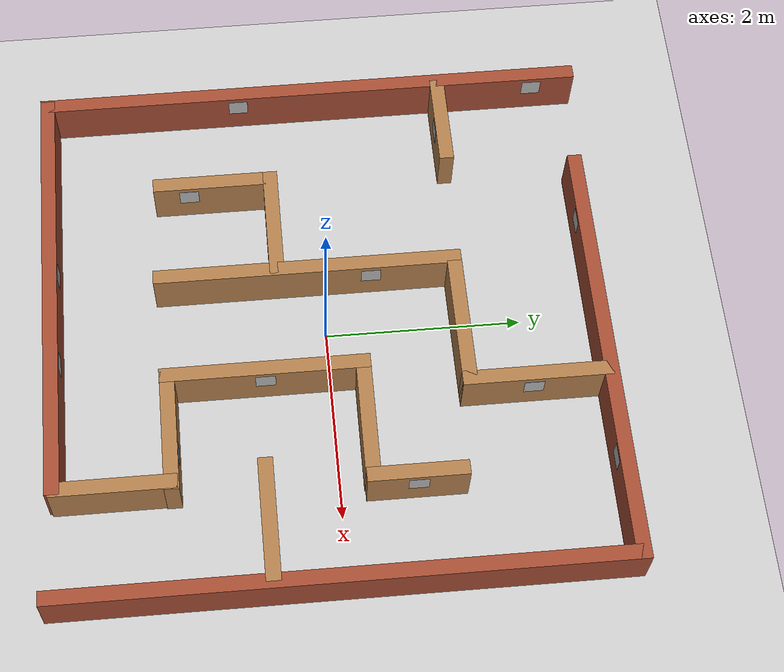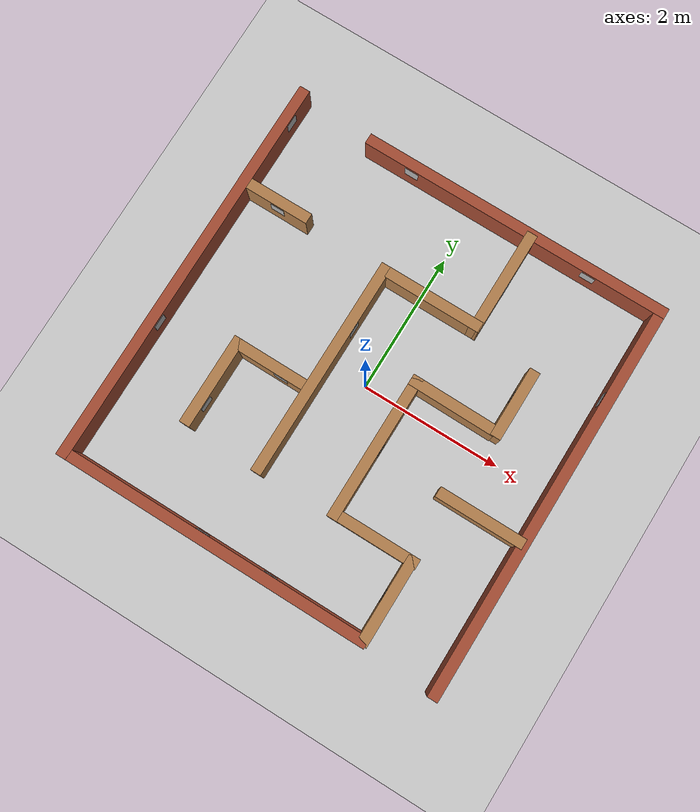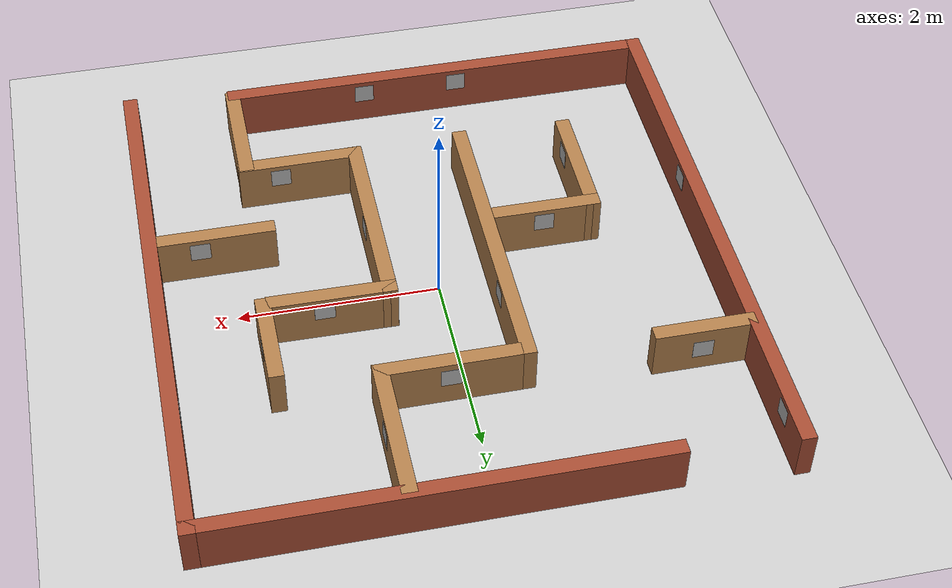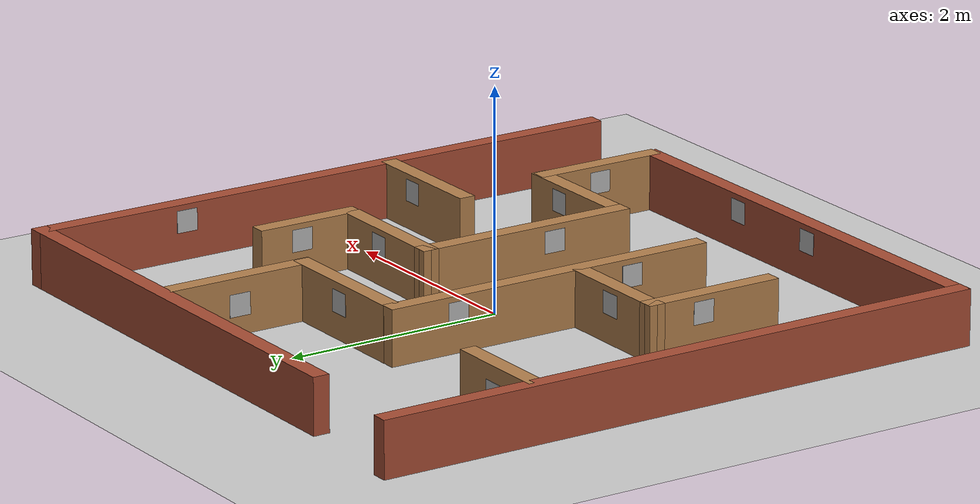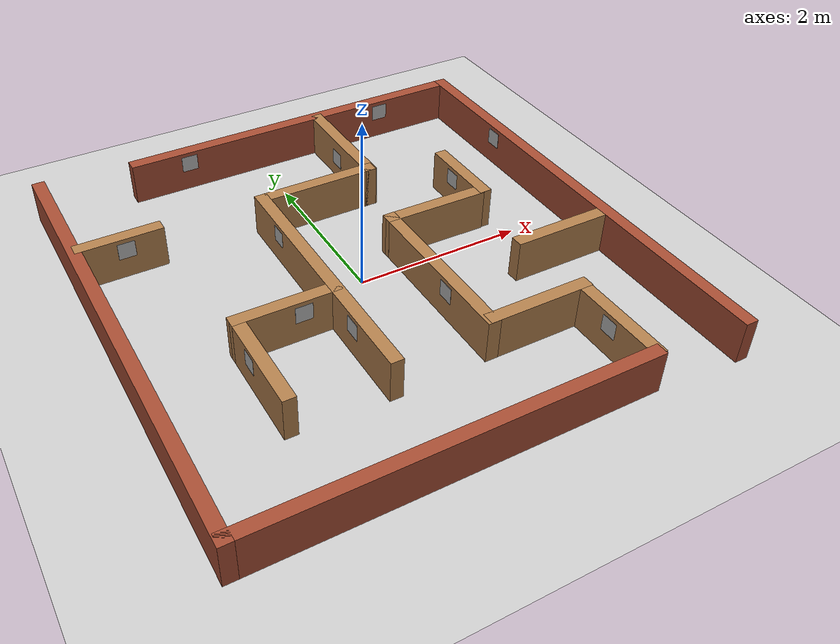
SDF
<sdf version='1.6'>
  <world name='default'>
    <light name='sun' type='directional'>
      <cast_shadows>1</cast_shadows>
      <pose frame=''>0 0 10 0 -0 0</pose>
      <diffuse>0.8 0.8 0.8 1</diffuse>
      <specular>0.2 0.2 0.2 1</specular>
      <attenuation>
        <range>1000</range>
        <constant>0.9</constant>
        <linear>0.01</linear>
        <quadratic>0.001</quadratic>
      </attenuation>
      <direction>-0.5 0.1 -0.9</direction>
    </light>
    <model name='ground_plane'>
      <static>1</static>
      <link name='link'>
        <collision name='collision'>
          <geometry>
            <plane>
              <normal>0 0 1</normal>
              <size>100 100</size>
            </plane>
          </geometry>
          <surface>
            <friction>
              <ode>
                <mu>100</mu>
                <mu2>50</mu2>
              </ode>
              <torsional>
                <ode/>
              </torsional>
            </friction>
            <contact>
              <ode/>
            </contact>
            <bounce/>
          </surface>
          <max_contacts>10</max_contacts>
        </collision>
        <visual name='visual'>
          <cast_shadows>0</cast_shadows>
          <geometry>
            <plane>
              <normal>0 0 1</normal>
              <size>100 100</size>
            </plane>
          </geometry>
          <material>
            <script>
              <uri>file://media/materials/scripts/gazebo.material</uri>
              <name>Gazebo/Grey</name>
            </script>
          </material>
        </visual>
        <self_collide>0</self_collide>
        <enable_wind>0</enable_wind>
        <kinematic>0</kinematic>
      </link>
    </model>
    <gravity>0 0 -9.8</gravity>
    <magnetic_field>6e-06 2.3e-05 -4.2e-05</magnetic_field>
    <atmosphere type='adiabatic'/>
    <physics name='default_physics' default='0' type='ode'>
      <max_step_size>0.001</max_step_size>
      <real_time_factor>1</real_time_factor>
      <real_time_update_rate>1000</real_time_update_rate>
    </physics>
    <scene>
      <ambient>0.4 0.4 0.4 1</ambient>
      <background>0.7 0.7 0.7 1</background>
      <shadows>1</shadows>
    </scene>
    <audio>
      <device>default</device>
    </audio>
    <wind/>
    <spherical_coordinates>
      <surface_model>EARTH_WGS84</surface_model>
      <latitude_deg>0</latitude_deg>
      <longitude_deg>0</longitude_deg>
      <elevation>0</elevation>
      <heading_deg>0</heading_deg>
    </spherical_coordinates>
    <model name='pokemon_maze_cs401'>
      <pose frame=''>0 -0.0 0 0 -0 0</pose>
      <link name='Wall_14'>
        <collision name='Wall_14_Collision'>
          <geometry>
            <box>
              <size>4.5 0.15 0.5</size>
            </box>
          </geometry>
          <pose frame=''>0 0 0.25 0 -0 0</pose>
          <max_contacts>10</max_contacts>
          <surface>
            <contact>
              <ode/>
            </contact>
            <bounce/>
            <friction>
              <torsional>
                <ode/>
              </torsional>
              <ode/>
            </friction>
          </surface>
        </collision>
        <visual name='Wall_14_Visual'>
          <pose frame=''>0 0 0.25 0 -0 0</pose>
          <geometry>
            <box>
              <size>4.5 0.15 0.5</size>
            </box>
          </geometry>
          <material>
            <script>
              <uri>file://media/materials/scripts/gazebo.material</uri>
              <name>Gazebo/Bricks</name>
            </script>
            <ambient>1 1 1 1</ambient>
          </material>
          <meta>
            <layer>0</layer>
          </meta>
        </visual>
        <pose frame=''>0.575138 2.76514 0 0 -0 0</pose>
        <self_collide>0</self_collide>
        <enable_wind>0</enable_wind>
        <kinematic>0</kinematic>
      </link>
      <link name='Wall_15'>
        <collision name='Wall_15_Collision'>
          <geometry>
            <box>
              <size>5.75 0.15 0.5</size>
            </box>
          </geometry>
          <pose frame=''>0 0 0.25 0 -0 0</pose>
          <max_contacts>10</max_contacts>
          <surface>
            <contact>
              <ode/>
            </contact>
            <bounce/>
            <friction>
              <torsional>
                <ode/>
              </torsional>
              <ode/>
            </friction>
          </surface>
        </collision>
        <visual name='Wall_15_Visual'>
          <pose frame=''>0 0 0.25 0 -0 0</pose>
          <geometry>
            <box>
              <size>5.75 0.15 0.5</size>
            </box>
          </geometry>
          <material>
            <script>
              <uri>file://media/materials/scripts/gazebo.material</uri>
              <name>Gazebo/Bricks</name>
            </script>
            <ambient>1 1 1 1</ambient>
          </material>
          <meta>
            <layer>0</layer>
          </meta>
        </visual>
        <pose frame=''>2.75014 -0.034857 0 0 -0 -1.5708</pose>
        <self_collide>0</self_collide>
        <enable_wind>0</enable_wind>
        <kinematic>0</kinematic>
      </link>
      <link name='Wall_17'>
        <collision name='Wall_17_Collision'>
          <geometry>
            <box>
              <size>5.75 0.15 0.5</size>
            </box>
          </geometry>
          <pose frame=''>0 0 0.25 0 -0 0</pose>
          <max_contacts>10</max_contacts>
          <surface>
            <contact>
              <ode/>
            </contact>
            <bounce/>
            <friction>
              <torsional>
                <ode/>
              </torsional>
              <ode/>
            </friction>
          </surface>
        </collision>
        <visual name='Wall_17_Visual'>
          <pose frame=''>0 0 0.25 0 -0 0</pose>
          <geometry>
            <box>
              <size>5.75 0.15 0.5</size>
            </box>
          </geometry>
          <material>
            <script>
              <uri>file://media/materials/scripts/gazebo.material</uri>
              <name>Gazebo/Bricks</name>
            </script>
            <ambient>1 1 1 1</ambient>
          </material>
          <meta>
            <layer>0</layer>
          </meta>
        </visual>
        <pose frame=''>-2.75014 0.034857 0 0 -0 -1.5708</pose>
        <self_collide>0</self_collide>
        <enable_wind>0</enable_wind>
        <kinematic>0</kinematic>
      </link>
      <link name='Wall_18'>
        <collision name='Wall_18_Collision'>
          <geometry>
            <box>
              <size>4.53776 0.15 0.5</size>
            </box>
          </geometry>
          <pose frame=''>0 0 0.25 0 -0 0</pose>
          <max_contacts>10</max_contacts>
          <surface>
            <contact>
              <ode/>
            </contact>
            <bounce/>
            <friction>
              <torsional>
                <ode/>
              </torsional>
              <ode/>
            </friction>
          </surface>
        </collision>
        <visual name='Wall_18_Visual'>
          <pose frame=''>0 0 0.25 0 -0 0</pose>
          <geometry>
            <box>
              <size>4.53776 0.15 0.5</size>
            </box>
          </geometry>
          <material>
            <script>
              <uri>file://media/materials/scripts/gazebo.material</uri>
              <name>Gazebo/Bricks</name>
            </script>
            <ambient>1 1 1 1</ambient>
          </material>
          <meta>
            <layer>0</layer>
          </meta>
        </visual>
        <pose frame=''>-0.541342 -2.76514 0 0 -0 0</pose>
        <self_collide>0</self_collide>
        <enable_wind>0</enable_wind>
        <kinematic>0</kinematic>
      </link>
      <link name='Wall_20'>
        <collision name='Wall_20_Collision'>
          <geometry>
            <box>
              <size>1.39624 0.15 0.5</size>
            </box>
          </geometry>
          <pose frame=''>0 0 0.25 0 -0 0</pose>
          <max_contacts>10</max_contacts>
          <surface>
            <contact>
              <ode/>
            </contact>
            <bounce/>
            <friction>
              <torsional>
                <ode/>
              </torsional>
              <ode/>
            </friction>
          </surface>
        </collision>
        <visual name='Wall_20_Visual'>
          <pose frame=''>0 0 0.25 0 -0 0</pose>
          <geometry>
            <box>
              <size>1.39624 0.15 0.5</size>
            </box>
          </geometry>
          <material>
            <script>
              <uri>file://media/materials/scripts/gazebo.material</uri>
              <name>Gazebo/Wood</name>
            </script>
            <ambient>1 1 1 1</ambient>
          </material>
          <meta>
            <layer>0</layer>
          </meta>
        </visual>
        <pose frame=''>0.186958 1.35833 0 0 -0 0</pose>
        <self_collide>0</self_collide>
        <enable_wind>0</enable_wind>
        <kinematic>0</kinematic>
      </link>
      <link name='Wall_21'>
        <collision name='Wall_21_Collision'>
          <geometry>
            <box>
              <size>1.5 0.15 0.5</size>
            </box>
          </geometry>
          <pose frame=''>0 0 0.25 0 -0 0</pose>
          <max_contacts>10</max_contacts>
          <surface>
            <contact>
              <ode/>
            </contact>
            <bounce/>
            <friction>
              <torsional>
                <ode/>
              </torsional>
              <ode/>
            </friction>
          </surface>
        </collision>
        <visual name='Wall_21_Visual'>
          <pose frame=''>0 0 0.25 0 -0 0</pose>
          <geometry>
            <box>
              <size>1.5 0.15 0.5</size>
            </box>
          </geometry>
          <material>
            <script>
              <uri>file://media/materials/scripts/gazebo.material</uri>
              <name>Gazebo/Wood</name>
            </script>
            <ambient>1 1 1 1</ambient>
          </material>
          <meta>
            <layer>0</layer>
          </meta>
        </visual>
        <pose frame=''>0.823048 2.03333 0 0 -0 1.5708</pose>
        <self_collide>0</self_collide>
        <enable_wind>0</enable_wind>
        <kinematic>0</kinematic>
      </link>
      <link name='Wall_23'>
        <collision name='Wall_23_Collision'>
          <geometry>
            <box>
              <size>3.15 0.15 0.5</size>
            </box>
          </geometry>
          <pose frame=''>0 0 0.25 0 -0 0</pose>
          <max_contacts>10</max_contacts>
          <surface>
            <contact>
              <ode/>
            </contact>
            <bounce/>
            <friction>
              <torsional>
                <ode/>
              </torsional>
              <ode/>
            </friction>
          </surface>
        </collision>
        <visual name='Wall_23_Visual'>
          <pose frame=''>0 0 0.25 0 -0 0</pose>
          <geometry>
            <box>
              <size>3.15 0.15 0.5</size>
            </box>
          </geometry>
          <material>
            <script>
              <uri>file://media/materials/scripts/gazebo.material</uri>
              <name>Gazebo/Wood</name>
            </script>
            <ambient>1 1 1 1</ambient>
          </material>
          <meta>
            <layer>0</layer>
          </meta>
        </visual>
        <pose frame=''>-0.562909 -0.142882 0 0 -0 -1.5708</pose>
        <self_collide>0</self_collide>
        <enable_wind>0</enable_wind>
        <kinematic>0</kinematic>
      </link>
      <link name='Wall_25'>
        <collision name='Wall_25_Collision'>
          <geometry>
            <box>
              <size>1 0.15 0.5</size>
            </box>
          </geometry>
          <pose frame=''>0 0 0.25 0 -0 0</pose>
          <max_contacts>10</max_contacts>
          <surface>
            <contact>
              <ode/>
            </contact>
            <bounce/>
            <friction>
              <torsional>
                <ode/>
              </torsional>
              <ode/>
            </friction>
          </surface>
        </collision>
        <visual name='Wall_25_Visual'>
          <pose frame=''>0 0 0.25 0 -0 0</pose>
          <geometry>
            <box>
              <size>1 0.15 0.5</size>
            </box>
          </geometry>
          <material>
            <script>
              <uri>file://media/materials/scripts/gazebo.material</uri>
              <name>Gazebo/Wood</name>
            </script>
            <ambient>1 1 1 1</ambient>
          </material>
          <meta>
            <layer>0</layer>
          </meta>
        </visual>
        <pose frame=''>-2.25203 1.42375 0 0 -0 0</pose>
        <self_collide>0</self_collide>
        <enable_wind>0</enable_wind>
        <kinematic>0</kinematic>
      </link>
      <link name='Wall_27'>
        <collision name='Wall_27_Collision'>
          <geometry>
            <box>
              <size>1.3 0.15 0.5</size>
            </box>
          </geometry>
          <pose frame=''>0 0 0.25 0 -0 0</pose>
          <max_contacts>10</max_contacts>
          <surface>
            <contact>
              <ode/>
            </contact>
            <bounce/>
            <friction>
              <torsional>
                <ode/>
              </torsional>
              <ode/>
            </friction>
          </surface>
        </collision>
        <visual name='Wall_27_Visual'>
          <pose frame=''>0 0 0.25 0 -0 0</pose>
          <geometry>
            <box>
              <size>1.3 0.15 0.5</size>
            </box>
          </geometry>
          <material>
            <script>
              <uri>file://media/materials/scripts/gazebo.material</uri>
              <name>Gazebo/Wood</name>
            </script>
            <ambient>1 1 1 1</ambient>
          </material>
          <meta>
            <layer>0</layer>
          </meta>
        </visual>
        <pose frame=''>-1.6582 -1.02577 0 0 -0 -1.5708</pose>
        <self_collide>0</self_collide>
        <enable_wind>0</enable_wind>
        <kinematic>0</kinematic>
      </link>
      <link name='Wall_33'>
        <collision name='Wall_33_Collision'>
          <geometry>
            <box>
              <size>1 0.15 0.5</size>
            </box>
          </geometry>
          <pose frame=''>0 0 0.25 0 -0 0</pose>
          <max_contacts>10</max_contacts>
          <surface>
            <contact>
              <ode/>
            </contact>
            <bounce/>
            <friction>
              <torsional>
                <ode/>
              </torsional>
              <ode/>
            </friction>
          </surface>
        </collision>
        <visual name='Wall_33_Visual'>
          <pose frame=''>0 0 0.25 0 -0 0</pose>
          <geometry>
            <box>
              <size>1 0.15 0.5</size>
            </box>
          </geometry>
          <material>
            <script>
              <uri>file://media/materials/scripts/gazebo.material</uri>
              <name>Gazebo/Wood</name>
            </script>
            <ambient>1 1 1 1</ambient>
          </material>
          <meta>
            <layer>0</layer>
          </meta>
        </visual>
        <pose frame=''>1.76558 0.7465 0 0 -0 -1.5708</pose>
        <self_collide>0</self_collide>
        <enable_wind>0</enable_wind>
        <kinematic>0</kinematic>
      </link>
      <link name='Wall_35'>
        <collision name='Wall_35_Collision'>
          <geometry>
            <box>
              <size>2.1 0.15 0.5</size>
            </box>
          </geometry>
          <pose frame=''>0 0 0.25 0 -0 0</pose>
          <max_contacts>10</max_contacts>
          <surface>
            <contact>
              <ode/>
            </contact>
            <bounce/>
            <friction>
              <torsional>
                <ode/>
              </torsional>
              <ode/>
            </friction>
          </surface>
        </collision>
        <visual name='Wall_35_Visual'>
          <pose frame=''>0 0 0.25 0 -0 0</pose>
          <geometry>
            <box>
              <size>2.1 0.15 0.5</size>
            </box>
          </geometry>
          <material>
            <script>
              <uri>file://media/materials/scripts/gazebo.material</uri>
              <name>Gazebo/Wood</name>
            </script>
            <ambient>1 1 1 1</ambient>
          </material>
          <meta>
            <layer>0</layer>
          </meta>
        </visual>
        <pose frame=''>0.54985 -0.650626 0 0 -0 -1.5708</pose>
        <self_collide>0</self_collide>
        <enable_wind>0</enable_wind>
        <kinematic>0</kinematic>
      </link>
      <link name='Wall_39'>
        <collision name='Wall_39_Collision'>
          <geometry>
            <box>
              <size>1.25 0.15 0.5</size>
            </box>
          </geometry>
          <pose frame=''>0 0 0.25 0 -0 0</pose>
          <max_contacts>10</max_contacts>
          <surface>
            <contact>
              <ode/>
            </contact>
            <bounce/>
            <friction>
              <torsional>
                <ode/>
              </torsional>
              <ode/>
            </friction>
          </surface>
        </collision>
        <visual name='Wall_39_Visual'>
          <pose frame=''>0 0 0.25 0 -0 0</pose>
          <geometry>
            <box>
              <size>1.25 0.15 0.5</size>
            </box>
          </geometry>
          <material>
            <script>
              <uri>file://media/materials/scripts/gazebo.material</uri>
              <name>Gazebo/Wood</name>
            </script>
            <ambient>1 1 1 1</ambient>
          </material>
          <meta>
            <layer>0</layer>
          </meta>
        </visual>
        <pose frame=''>1.13595 -1.62351 0 0 -0 0</pose>
        <self_collide>0</self_collide>
        <enable_wind>0</enable_wind>
        <kinematic>0</kinematic>
      </link>
      <link name='Wall_41'>
        <collision name='Wall_41_Collision'>
          <geometry>
            <box>
              <size>1.25 0.15 0.5</size>
            </box>
          </geometry>
          <pose frame=''>0 0 0.25 0 -0 0</pose>
          <max_contacts>10</max_contacts>
          <surface>
            <contact>
              <ode/>
            </contact>
            <bounce/>
            <friction>
              <torsional>
                <ode/>
              </torsional>
              <ode/>
            </friction>
          </surface>
        </collision>
        <visual name='Wall_41_Visual'>
          <pose frame=''>0 0 0.25 0 -0 0</pose>
          <geometry>
            <box>
              <size>1.25 0.15 0.5</size>
            </box>
          </geometry>
          <material>
            <script>
              <uri>file://media/materials/scripts/gazebo.material</uri>
              <name>Gazebo/Wood</name>
            </script>
            <ambient>1 1 1 1</ambient>
          </material>
          <meta>
            <layer>0</layer>
          </meta>
        </visual>
        <pose frame=''>1.6754 -2.18759 0 0 -0 -1.5708</pose>
        <self_collide>0</self_collide>
        <enable_wind>0</enable_wind>
        <kinematic>0</kinematic>
      </link>
      <link name='Wall_43'>
        <collision name='Wall_43_Collision'>
          <geometry>
            <box>
              <size>1.26134 0.15 0.5</size>
            </box>
          </geometry>
          <pose frame=''>0 0 0.25 0 -0 0</pose>
          <max_contacts>10</max_contacts>
          <surface>
            <contact>
              <ode/>
            </contact>
            <bounce/>
            <friction>
              <torsional>
                <ode/>
              </torsional>
              <ode/>
            </friction>
          </surface>
        </collision>
        <visual name='Wall_43_Visual'>
          <pose frame=''>0 0 0.25 0 -0 0</pose>
          <geometry>
            <box>
              <size>1.26134 0.15 0.5</size>
            </box>
          </geometry>
          <material>
            <script>
              <uri>file://media/materials/scripts/gazebo.material</uri>
              <name>Gazebo/Wood</name>
            </script>
            <ambient>1 1 1 1</ambient>
          </material>
          <meta>
            <layer>0</layer>
          </meta>
        </visual>
        <pose frame=''>1.10549 0.318735 0 0 -0 -0.010148</pose>
        <self_collide>0</self_collide>
        <enable_wind>0</enable_wind>
        <kinematic>0</kinematic>
      </link>
      <link name='Wall_47'>
        <collision name='Wall_47_Collision'>
          <geometry>
            <box>
              <size>1.25 0.15 0.5</size>
            </box>
          </geometry>
          <pose frame=''>0 0 0.25 0 -0 0</pose>
          <max_contacts>10</max_contacts>
          <surface>
            <contact>
              <ode/>
            </contact>
            <bounce/>
            <friction>
              <torsional>
                <ode/>
              </torsional>
              <ode/>
            </friction>
          </surface>
        </collision>
        <visual name='Wall_47_Visual'>
          <pose frame=''>0 0 0.25 0 -0 0</pose>
          <geometry>
            <box>
              <size>1.25 0.15 0.5</size>
            </box>
          </geometry>
          <material>
            <script>
              <uri>file://media/materials/scripts/gazebo.material</uri>
              <name>Gazebo/Wood</name>
            </script>
            <ambient>1 1 1 1</ambient>
          </material>
          <meta>
            <layer>0</layer>
          </meta>
        </visual>
        <pose frame=''>2.13068 -0.714156 0 0 -0 0</pose>
        <self_collide>0</self_collide>
        <enable_wind>0</enable_wind>
        <kinematic>0</kinematic>
      </link>
      <link name='Wall_49'>
        <collision name='Wall_49_Collision'>
          <geometry>
            <box>
              <size>1.22083 0.15 0.5</size>
            </box>
          </geometry>
          <pose frame=''>0 0 0.25 0 -0 0</pose>
          <max_contacts>10</max_contacts>
          <surface>
            <contact>
              <ode/>
            </contact>
            <bounce/>
            <friction>
              <torsional>
                <ode/>
              </torsional>
              <ode/>
            </friction>
          </surface>
        </collision>
        <visual name='Wall_49_Visual'>
          <pose frame=''>0 0 0.25 0 -0 0</pose>
          <geometry>
            <box>
              <size>1.22083 0.15 0.5</size>
            </box>
          </geometry>
          <material>
            <script>
              <uri>file://media/materials/scripts/gazebo.material</uri>
              <name>Gazebo/Wood</name>
            </script>
            <ambient>1 1 1 1</ambient>
          </material>
          <meta>
            <layer>0</layer>
          </meta>
        </visual>
        <pose frame=''>-1.12279 -0.452587 0 0 -0 -0.003397</pose>
        <self_collide>0</self_collide>
        <enable_wind>0</enable_wind>
        <kinematic>0</kinematic>
      </link>
      <static>1</static>
    </model>
    <model name='Pokemon00'>
      <static>1</static>
      <link name='link'>
        <visual name='visual'>
          <geometry>
            <mesh>
              <uri>model://pokemon00/meshes/Marker0.dae</uri>
              <scale>0.4 0.4 0.4</scale>
            </mesh>
          </geometry>
        </visual>
        <self_collide>0</self_collide>
        <enable_wind>0</enable_wind>
        <kinematic>0</kinematic>
      </link>
      <pose frame=''>-0.490051 -1.23527 0.250818 0 -0 0</pose>
    </model>
    <model name='Pokemon01'>
      <static>1</static>
      <link name='link'>
        <visual name='visual'>
          <geometry>
            <mesh>
              <uri>model://pokemon01/meshes/Marker0.dae</uri>
              <scale>0.4 0.4 0.4</scale>
            </mesh>
          </geometry>
        </visual>
        <self_collide>0</self_collide>
        <enable_wind>0</enable_wind>
        <kinematic>0</kinematic>
      </link>
     <pose frame=''>0.022867 1.28985 0.250476 0 0 -1.55915</pose>
    </model>
    <model name='Pokemon02'>
      <static>1</static>
      <link name='link'>
        <visual name='visual'>
          <geometry>
            <mesh>
              <uri>model://pokemon02/meshes/Marker0.dae</uri>
              <scale>0.4 0.4 0.4</scale>
            </mesh>
          </geometry>
        </visual>
        <self_collide>0</self_collide>
        <enable_wind>0</enable_wind>
        <kinematic>0</kinematic>
      </link>
      <pose frame=''>-1.58135 -1.30724 0.25 0 -0 0</pose>
    </model>
    <model name='Pokemon03'>
      <static>1</static>
      <link name='link'>
        <visual name='visual'>
          <geometry>
            <mesh>
              <uri>model://pokemon03/meshes/Marker0.dae</uri>
              <scale>0.4 0.4 0.4</scale>
            </mesh>
          </geometry>
        </visual>
        <self_collide>0</self_collide>
        <enable_wind>0</enable_wind>
        <kinematic>0</kinematic>
      </link>
      <pose frame=''>-2.19823 1.34774 0.25 0 0 -1.57381</pose>
    </model>
    <model name='Pokemon04'>
      <static>1</static>
      <link name='link'>
        <visual name='visual'>
          <geometry>
            <mesh>
              <uri>model://pokemon04/meshes/Marker0.dae</uri>
              <scale>0.4 0.4 0.4</scale>
            </mesh>
          </geometry>
        </visual>
        <self_collide>0</self_collide>
        <enable_wind>0</enable_wind>
        <kinematic>0</kinematic>
      </link>
     <pose frame=''>0.902793 1.99875 0.25 0 -0 0</pose>
    </model>
    <model name='Pokemon05'>
      <static>1</static>
      <link name='link'>
        <visual name='visual'>
          <geometry>
            <mesh>
              <uri>model://pokemon05/meshes/Marker0.dae</uri>
              <scale>0.4 0.4 0.4</scale>
            </mesh>
          </geometry>
        </visual>
        <self_collide>0</self_collide>
        <enable_wind>0</enable_wind>
        <kinematic>0</kinematic>
      </link>
      <pose frame=''>0.622887 -0.65135 0.25 0 -0 0</pose>
    </model>
    <model name='Pokemon06'>
      <static>1</static>
      <link name='link'>
        <visual name='visual'>
          <geometry>
            <mesh>
              <uri>model://pokemon06/meshes/Marker0.dae</uri>
              <scale>0.4 0.4 0.4</scale>
            </mesh>
          </geometry>
        </visual>
        <self_collide>0</self_collide>
        <enable_wind>0</enable_wind>
        <kinematic>0</kinematic>
      </link>
      <pose frame=''>1.33332 -1.54953 0.25 0 -0 1.57</pose>
    </model>
    <model name='Pokemon07'>
      <static>1</static>
      <link name='link'>
        <visual name='visual'>
          <geometry>
            <mesh>
              <uri>model://pokemon07/meshes/Marker0.dae</uri>
              <scale>0.4 0.4 0.4</scale>
            </mesh>
          </geometry>
        </visual>
        <self_collide>0</self_collide>
        <enable_wind>0</enable_wind>
        <kinematic>0</kinematic>
      </link>
      <pose frame=''>-0.636532 0.77823 0.25 0 0 -3.14</pose>
    </model>
    <model name='Pokemon08'>
      <static>1</static>
      <link name='link'>
        <visual name='visual'>
          <geometry>
            <mesh>
              <uri>model://pokemon08/meshes/Marker0.dae</uri>
              <scale>0.4 0.4 0.4</scale>
            </mesh>
          </geometry>
        </visual>
        <self_collide>0</self_collide>
        <enable_wind>0</enable_wind>
        <kinematic>0</kinematic>
      </link>
      <pose frame=''>1.84016 0.752289 0.25 0 -0 0</pose>
    </model>
    <model name='Pokemon00_0'>
      <static>1</static>
      <link name='link'>
        <visual name='visual'>
          <geometry>
            <mesh>
              <uri>model://pokemon09/meshes/Marker0.dae</uri>
              <scale>0.4 0.4 0.4</scale>
            </mesh>
          </geometry>
        </visual>
        <self_collide>0</self_collide>
        <enable_wind>0</enable_wind>
        <kinematic>0</kinematic>
      </link>
     <pose frame=''>-0.487932 0.503085 0.25 0 -0 0</pose>
    </model>
    <model name='Pokemon00_1'>
      <static>1</static>
      <link name='link'>
        <visual name='visual'>
          <geometry>
            <mesh>
              <uri>model://pokemon00/meshes/Marker0.dae</uri>
              <scale>0.4 0.4 0.4</scale>
            </mesh>
          </geometry>
        </visual>
        <self_collide>0</self_collide>
        <enable_wind>0</enable_wind>
        <kinematic>0</kinematic>
      </link>
     <pose frame=''>2.17545 -0.780987 0.256531 0.007812 -0.001053 -1.5712</pose>
    </model>
    <model name='Pokemon01_0'>
      <static>1</static>
      <link name='link'>
        <visual name='visual'>
          <geometry>
            <mesh>
              <uri>model://pokemon01/meshes/Marker0.dae</uri>
              <scale>0.4 0.4 0.4</scale>
            </mesh>
          </geometry>
        </visual>
        <self_collide>0</self_collide>
        <enable_wind>0</enable_wind>
        <kinematic>0</kinematic>
      </link>
      <pose frame=''>-0.956931 2.69188 0.251145 0 0 -1.57</pose>
    </model>
    <model name='Pokemon02_0'>
      <static>1</static>
      <link name='link'>
        <visual name='visual'>
          <geometry>
            <mesh>
              <uri>model://pokemon02/meshes/Marker0.dae</uri>
              <scale>0.4 0.4 0.4</scale>
            </mesh>
          </geometry>
        </visual>
        <self_collide>0</self_collide>
        <enable_wind>0</enable_wind>
        <kinematic>0</kinematic>
      </link>
     <pose frame=''>-2.67686 2.45605 0.25 0 -0 0</pose>
    </model>
    <model name='Pokemon03_0'>
      <static>1</static>
      <link name='link'>
        <visual name='visual'>
          <geometry>
            <mesh>
              <uri>model://pokemon03/meshes/Marker0.dae</uri>
              <scale>0.4 0.4 0.4</scale>
            </mesh>
          </geometry>
        </visual>
        <self_collide>0</self_collide>
        <enable_wind>0</enable_wind>
        <kinematic>0</kinematic>
      </link>
      <pose frame=''>0.474197 -0.926305 0.25 0 -0 3.14</pose>
    </model>
    <model name='Pokemon04_0'>
      <static>1</static>
      <link name='link'>
        <visual name='visual'>
          <geometry>
            <mesh>
              <uri>model://pokemon04/meshes/Marker0.dae</uri>
              <scale>0.4 0.4 0.4</scale>
            </mesh>
          </geometry>
        </visual>
        <self_collide>0</self_collide>
        <enable_wind>0</enable_wind>
        <kinematic>0</kinematic>
      </link>
      <pose frame=''>1.602 -2.16503 0.25 0 -0 3.14</pose>
    </model>
    <model name='Pokemon05_0'>
      <static>1</static>
      <link name='link'>
        <visual name='visual'>
          <geometry>
            <mesh>
              <uri>model://pokemon05/meshes/Marker0.dae</uri>
              <scale>0.4 0.4 0.4</scale>
            </mesh>
          </geometry>
        </visual>
        <self_collide>0</self_collide>
        <enable_wind>0</enable_wind>
        <kinematic>0</kinematic>
      </link>
      <pose frame=''>-0.639423 -0.956949 0.25 0 0 -3.14</pose>
    </model>
    <model name='Pokemon06_0'>
      <static>1</static>
      <link name='link'>
        <visual name='visual'>
          <geometry>
            <mesh>
              <uri>model://pokemon06/meshes/Marker0.dae</uri>
              <scale>0.4 0.4 0.4</scale>
            </mesh>
          </geometry>
        </visual>
        <self_collide>0</self_collide>
        <enable_wind>0</enable_wind>
        <kinematic>0</kinematic>
      </link>
     <pose frame=''>-0.956327 -0.528702 0.25 0 0 -1.57</pose>
    </model>
    <model name='Pokemon07_0'>
      <static>1</static>
      <link name='link'>
        <visual name='visual'>
          <geometry>
            <mesh>
              <uri>model://pokemon07/meshes/Marker0.dae</uri>
              <scale>0.4 0.4 0.4</scale>
            </mesh>
          </geometry>
        </visual>
        <self_collide>0</self_collide>
        <enable_wind>0</enable_wind>
        <kinematic>0</kinematic>
      </link>
      <pose frame=''>-0.636532 0.77823 0.25 0 0 -3.14</pose>
    </model>
    <model name='Pokemon08_0'>
      <static>1</static>
      <link name='link'>
        <visual name='visual'>
          <geometry>
            <mesh>
              <uri>model://pokemon08/meshes/Marker0.dae</uri>
              <scale>0.4 0.4 0.4</scale>
            </mesh>
          </geometry>
        </visual>
        <self_collide>0</self_collide>
        <enable_wind>0</enable_wind>
        <kinematic>0</kinematic>
      </link>
      <pose frame=''>-1.73193 -0.917556 0.25 0 -0 3.14</pose>
    </model>
    <model name='Pokemon00_2'>
      <static>1</static>
      <link name='link'>
        <visual name='visual'>
          <geometry>
            <mesh>
              <uri>model://pokemon09/meshes/Marker0.dae</uri>
              <scale>0.4 0.4 0.4</scale>
            </mesh>
          </geometry>
        </visual>
        <self_collide>0</self_collide>
        <enable_wind>0</enable_wind>
        <kinematic>0</kinematic>
      </link>
      <pose frame=''>-0.734659 -2.69024 0.25 0 -0 1.57</pose>
    </model>
    <model name='Pokemon00_3'>
      <static>1</static>
      <link name='link'>
        <visual name='visual'>
          <geometry>
            <mesh>
              <uri>model://pokemon00/meshes/Marker0.dae</uri>
              <scale>0.4 0.4 0.4</scale>
            </mesh>
          </geometry>
        </visual>
        <self_collide>0</self_collide>
        <enable_wind>0</enable_wind>
        <kinematic>0</kinematic>
      </link>
      <pose frame=''>0.748437 2.04001 0.162966 0 -0 3.14</pose>
    </model>
    <model name='Pokemon01_1'>
      <static>1</static>
      <link name='link'>
        <visual name='visual'>
          <geometry>
            <mesh>
              <uri>model://pokemon01/meshes/Marker0.dae</uri>
              <scale>0.4 0.4 0.4</scale>
            </mesh>
          </geometry>
        </visual>
        <self_collide>0</self_collide>
        <enable_wind>0</enable_wind>
        <kinematic>0</kinematic>
      </link>
      <pose frame=''>-2.6735 -0.729383 0.25 0 -0 0</pose>
    </model>
    <model name='Pokemon03_1'>
      <static>1</static>
      <link name='link'>
        <visual name='visual'>
          <geometry>
            <mesh>
              <uri>model://pokemon03/meshes/Marker0.dae</uri>
              <scale>0.4 0.4 0.4</scale>
            </mesh>
          </geometry>
        </visual>
        <self_collide>0</self_collide>
        <enable_wind>0</enable_wind>
        <kinematic>0</kinematic>
      </link>
      <pose frame=''>1.69207 0.842368 0.25 0 0 -3.14</pose>
    </model>
    <model name='Pokemon03_2'>
      <static>1</static>
      <link name='link'>
        <visual name='visual'>
          <geometry>
            <mesh>
              <uri>model://pokemon03/meshes/Marker0.dae</uri>
              <scale>0.4 0.4 0.4</scale>
            </mesh>
          </geometry>
        </visual>
        <self_collide>0</self_collide>
        <enable_wind>0</enable_wind>
        <kinematic>0</kinematic>
      </link>
      <pose frame=''>-1.1537 -0.379145 0.25 0 -0 1.57</pose>
    </model>
    <model name='Pokemon04_1'>
      <static>1</static>
      <link name='link'>
        <visual name='visual'>
          <geometry>
            <mesh>
              <uri>model://pokemon04/meshes/Marker0.dae</uri>
              <scale>0.4 0.4 0.4</scale>
            </mesh>
          </geometry>
        </visual>
        <self_collide>0</self_collide>
        <enable_wind>0</enable_wind>
        <kinematic>0</kinematic>
      </link>
      <pose frame=''>1.18793 0.393336 0.25 0 -0 1.57</pose>
    </model>
    <model name='Pokemon05_1'>
      <static>1</static>
      <link name='link'>
        <visual name='visual'>
          <geometry>
            <mesh>
              <uri>model://pokemon05/meshes/Marker0.dae</uri>
              <scale>0.4 0.4 0.4</scale>
            </mesh>
          </geometry>
        </visual>
        <self_collide>0</self_collide>
        <enable_wind>0</enable_wind>
        <kinematic>0</kinematic>
      </link>
      <pose frame=''>0.17112 1.43378 0.229168 0 -0 1.57</pose>
    </model>
    <model name='Pokemon06_1'>
      <static>1</static>
      <link name='link'>
        <visual name='visual'>
          <geometry>
            <mesh>
              <uri>model://pokemon06/meshes/Marker0.dae</uri>
              <scale>0.4 0.4 0.4</scale>
            </mesh>
          </geometry>
        </visual>
        <self_collide>0</self_collide>
        <enable_wind>0</enable_wind>
        <kinematic>0</kinematic>
      </link>
      <pose frame=''>2.67343 1.39166 0.25 0 -0 3.14</pose>
    </model>
    <model name='Pokemon07_1'>
      <static>1</static>
      <link name='link'>
        <visual name='visual'>
          <geometry>
            <mesh>
              <uri>model://pokemon07/meshes/Marker0.dae</uri>
              <scale>0.4 0.4 0.4</scale>
            </mesh>
          </geometry>
        </visual>
        <self_collide>0</self_collide>
        <enable_wind>0</enable_wind>
        <kinematic>0</kinematic>
      </link>
      <pose frame=''>2.26181 -0.640877 0.25 0 -0 1.57</pose>
    </model>
    <model name='Pokemon08_1'>
      <static>1</static>
      <link name='link'>
        <visual name='visual'>
          <geometry>
            <mesh>
              <uri>model://pokemon08/meshes/Marker0.dae</uri>
              <scale>0.4 0.4 0.4</scale>
            </mesh>
          </geometry>
        </visual>
        <self_collide>0</self_collide>
        <enable_wind>0</enable_wind>
        <kinematic>0</kinematic>
      </link>
     <pose frame=''>0.269165 -2.69162 0.25 0 -0 1.57</pose>
    </model>
    <model name='Pokemon00_4'>
      <static>1</static>
      <link name='link'>
        <visual name='visual'>
          <geometry>
            <mesh>
              <uri>model://pokemon09/meshes/Marker0.dae</uri>
              <scale>0.4 0.4 0.4</scale>
            </mesh>
          </geometry>
        </visual>
        <self_collide>0</self_collide>
        <enable_wind>0</enable_wind>
        <kinematic>0</kinematic>
      </link>
      <pose frame=''>-2.23463 1.50002 0.161043 0 -0 1.57</pose>
    </model>
    <model name='Pokemon07_2'>
      <static>1</static>
      <link name='link'>
        <visual name='visual'>
          <geometry>
            <mesh>
              <uri>model://pokemon07/meshes/Marker0.dae</uri>
              <scale>0.4 0.4 0.4</scale>
            </mesh>
          </geometry>
        </visual>
        <self_collide>0</self_collide>
        <enable_wind>0</enable_wind>
        <kinematic>0</kinematic>
      </link>
      <pose frame=''>1.72171 2.69111 0.25 0 0 -1.57</pose>
    </model>

    <gui fullscreen='0'>
      <camera name='user_camera'>
        <pose frame=''>-6.55325 -1.10117 7.09006 0 0.845797 0.076617</pose>
        <view_controller>orbit</view_controller>
        <projection_type>perspective</projection_type>
      </camera>
    </gui>
  </world>
</sdf>
